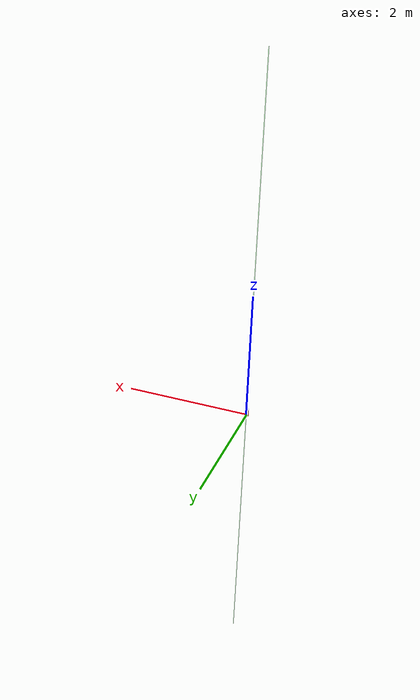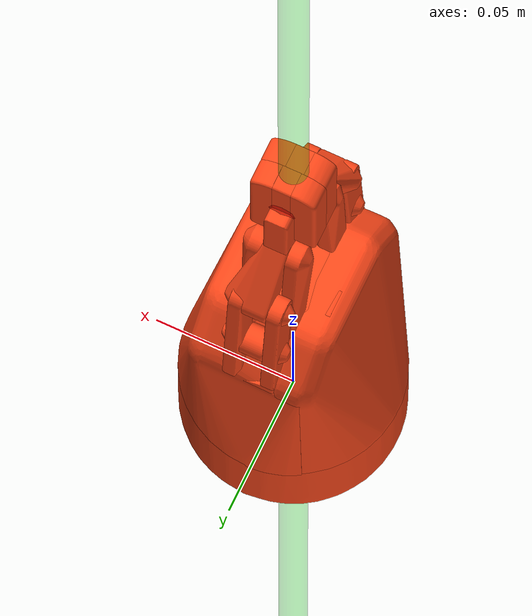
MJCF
<mujoco model="ChangingTek_AG2F90-C">

  <default>
    <default class="visual">
      <geom group="1" type="mesh" contype="0" conaffinity="0"/>
    </default>
    <default class="collision">
      <geom material="collision_material" condim="3" contype="0" conaffinity="1" priority="1" group="0"
            solref="0.005 1" friction="1 0.01 0.01"/>
      <equality solimp="0.99 0.999 1e-05" solref="0.005 1"/>
    </default>
  </default>

  <compiler angle="radian"/>

  <worldbody>
    <body name="gripper_base">
      <site name="ft_frame" pos="0 0 0" size="0.01 0.01 0.01" rgba="1 0 0 1" type="sphere" class="visual"/>
      <geom type="mesh" mesh="gripper_base_0"
            material="white" class="visual"/>
      <geom type="mesh" mesh="gripper_base_1"
            material="silver" class="visual"/>
      <geom type="mesh" mesh="gripper_base_2"
            material="black_metal" class="visual"/>
      <geom type="mesh" class="collision"
            mesh="gripper_base_collision_0"/>
      <geom type="mesh" class="collision"
            mesh="gripper_base_collision_1"/>
      <geom type="mesh" class="collision"
            mesh="gripper_base_collision_2"/>

      <body name="eef" pos="0 0 0.19">
        <site name="grip_site" size="0.01 0.01 0.01" rgba="1 0 0 0.5" type="sphere" class="visual"/>
        <site name="ee_x" pos="0.1 0 0" size="0.005 .1" quat="0.707105  0 0.707108 0 " rgba="1 0 0 0" type="cylinder"
              class="visual"/>
        <site name="ee_y" pos="0 0.1 0" size="0.005 .1" quat="0.707105 0.707108 0 0" rgba="0 1 0 0" type="cylinder"
              class="visual"/>
        <site name="ee_z" pos="0 0 0.1" size="0.005 .1" quat="1 0 0 0" rgba="0 0 1 0" type="cylinder" class="visual"/>
        <!-- This site was added for visualization. -->
        <body name="line_front" pos="0 0 0">
          <site name="grip_site_cylinder" pos="0 0 0" size="0.005 5" rgba="0 1 0 0.3"
                type="cylinder" class="visual"/>
        </body>
      </body>

      <body name="left_1_link" pos="0 -0.030141 0.090147" quat="0.7071054825112363 0.7071080798594735 0.0 0.0">
        <inertial pos="-1.28088127539536E-18 0.0252734640095115 -0.00214040614650292" quat="1.0 0.0 0.0 0.0"
                  mass="0.0129014357535444"
                  diaginertia="3.35976482443235e-06 1.65185846940368e-07 3.25394125032869e-06"/>
        <joint name="gripper_joint" type="hinge" range="0 1" axis="1 0 0"/>
        <geom type="mesh" mesh="link_1"
              material="black_metal" class="visual"/>
        <geom type="mesh" class="collision"
              mesh="link_1_collision_0"/>
        <geom type="mesh" class="collision"
              mesh="link_1_collision_1"/>
        <geom type="mesh" class="collision"
              mesh="link_1_collision_2"/>
        <body name="left_in_link" pos="0 0.023914 -0.0020253" quat="1.0 0.0 0.0 0.0">
          <inertial pos="-1.75682286192042E-11 -0.0108820145632286 -0.00405362317350415" quat="1.0 0.0 0.0 0.0"
                    mass="0.0134557296415635"
                    diaginertia="1.43307384392376e-06 3.88838933230828e-07 1.33747540965672e-06"/>
          <joint name="left_in_Joint" type="hinge" range="0 1" axis="-1 0 0"/>
          <geom type="mesh" mesh="in_link"
                material="black_metal" class="visual"/>
          <geom type="mesh" class="collision"
                mesh="in_link_collision_0"/>
          <geom type="mesh" class="collision"
                mesh="in_link_collision_1"/>
          <geom type="mesh" class="collision"
                mesh="in_link_collision_2"/>
        </body>
        <body name="left_up_link" pos="0 0.054804 -0.0046413" quat="1.0 0.0 0.0 0.0">
          <inertial pos="8.69802213948566E-11 0.0124078988097444 -0.0072525614743534" quat="1.0 0.0 0.0 0.0"
                    mass="0.014692561982481"
                    diaginertia="2.35283034039115e-06 5.8942945477579e-07 2.07228020361883e-06"/>
          <joint name="left_up_Joint" type="hinge" range="0 1" axis="-1 0 0"/>
          <geom type="mesh" mesh="up_link_0"
                material="silver" class="visual"/>
          <geom type="mesh" mesh="up_link_1"
                material="black_metal" class="visual"/>
          <geom type="mesh" class="collision"
                mesh="up_link_collision_0"/>
          <geom type="mesh" class="collision"
                mesh="up_link_collision_1"/>
          <geom type="mesh" class="collision"
                mesh="up_link_collision_2"/>
          <body name="left_Pad_link" pos="0 0.04125 -0.02425" quat="1.0 0.0 0.0 0.0">
            <inertial pos="-3.83777509579761E-08 0.00303135276101582 0.0028336970357949" quat="1.0 0.0 0.0 0.0"
                      mass="0.0183171479595721"
                      diaginertia="2.35683098270332e-06 9.08136064346118e-07 3.18448591439082e-06"/>
            <geom type="mesh" mesh="pad_link"
                  material="black_rubber" class="visual"/>
            <geom type="mesh" class="collision"
                  mesh="pad_link_collision_0"/>
            <geom type="mesh" class="collision"
                  mesh="pad_link_collision_1"/>
            <geom type="mesh" class="collision"
                  mesh="pad_link_collision_2"/>
          </body>
        </body>
      </body>
      <body name="left_2_link" pos="0 -0.016 0.107" quat="0.7071054825112363 0.7071080798594735 0.0 0.0">
        <inertial pos="5.08224485200288E-06 0.0327050710040551 -0.00276963392800038" quat="1.0 0.0 0.0 0.0"
                  mass="0.0188752657753052"
                  diaginertia="3.4145090175335e-06 2.86837057727488e-07 3.39111483394506e-06"/>
        <joint name="left_2_Joint" type="hinge" range="0 1" axis="1 0 0"/>
        <geom type="mesh" mesh="link_2_0"
              material="silver" class="visual"/>
        <geom type="mesh" mesh="link_2_1"
              material="black_metal" class="visual"/>
        <geom type="mesh" class="collision"
              mesh="link_2_collision_0"/>
        <geom type="mesh" class="collision"
              mesh="link_2_collision_1"/>
        <geom type="mesh" class="collision"
              mesh="link_2_collision_2"/>
      </body>
      <body name="right_2_link" pos="0 0.016 0.107"
            quat="-2.5973434669646147e-06 -2.597353007557415e-06 0.7071080798547033 0.707105482506466">
        <inertial pos="1.94651792710713E-17 0.0327174794493866 -0.00277053098700989" quat="1.0 0.0 0.0 0.0"
                  mass="0.0188856364479881"
                  diaginertia="3.41458781978465e-06 2.86883124998043e-07 3.39114800103702e-06"/>
        <joint name="right_2_Joint" type="hinge" range="0 1" axis="1 0 0"/>
        <geom type="mesh" mesh="link_2_0"
              material="silver" class="visual"/>
        <geom type="mesh" mesh="link_2_1"
              material="black_metal" class="visual"/>
        <geom type="mesh" class="collision"
              mesh="link_2_collision_0"/>
        <geom type="mesh" class="collision"
              mesh="link_2_collision_1"/>
        <geom type="mesh" class="collision"
              mesh="link_2_collision_2"/>
      </body>
      <body name="right_1_link" pos="0 0.030141 0.090147"
            quat="-2.5973434669646147e-06 -2.597353007557415e-06 0.7071080798547033 0.707105482506466">
        <inertial pos="-5.25233292439781E-19 0.0252734640095115 -0.00214040614650291" quat="1.0 0.0 0.0 0.0"
                  mass="0.0129014357535444"
                  diaginertia="3.35976482443235e-06 1.65185846940368e-07 3.25394125032869e-06"/>
        <joint name="right_1_Joint" type="hinge" range="0 1" axis="1 0 0"/>
        <geom type="mesh" mesh="link_1"
              material="black_metal" class="visual"/>
        <geom type="mesh" class="collision"
              mesh="link_1_collision_0"/>
        <geom type="mesh" class="collision"
              mesh="link_1_collision_1"/>
        <geom type="mesh" class="collision"
              mesh="link_1_collision_2"/>
        <body name="right_in_link" pos="0 0.023914 -0.0020253" quat="1.0 0.0 0.0 0.0">
          <inertial pos="-1.7568261982498E-11 -0.0108820145632292 -0.00405362317350229" quat="1.0 0.0 0.0 0.0"
                    mass="0.0134557296415635"
                    diaginertia="1.43307384392376e-06 3.88838933230828e-07 1.33747540965672e-06"/>
          <joint name="right_in_Joint" type="hinge" range="0 1" axis="-1 0 0"/>
          <geom type="mesh" mesh="in_link"
                material="black_metal" class="visual"/>
          <geom type="mesh" class="collision"
                mesh="in_link_collision_0"/>
          <geom type="mesh" class="collision"
                mesh="in_link_collision_1"/>
          <geom type="mesh" class="collision"
                mesh="in_link_collision_2"/>
        </body>
        <body name="right_up_link" pos="0 0.054804 -0.0046413" quat="1.0 0.0 0.0 0.0">
          <inertial pos="8.69814518862609E-11 0.0124078988097266 -0.00725256147435587" quat="1.0 0.0 0.0 0.0"
                    mass="0.014692561982481"
                    diaginertia="2.35283034039115e-06 5.89429454773258e-07 2.07228020362137e-06"/>
          <joint name="right_up_Joint" type="hinge" range="0 1" axis="-1 0 0"/>
          <geom type="mesh" mesh="up_link_0"
                material="silver" class="visual"/>
          <geom type="mesh" mesh="up_link_1"
                material="black_metal" class="visual"/>
          <geom type="mesh" class="collision"
                mesh="up_link_collision_0"/>
          <geom type="mesh" class="collision"
                mesh="up_link_collision_1"/>
          <geom type="mesh" class="collision"
                mesh="up_link_collision_2"/>
          <body name="right_Pad_link" pos="0 0.04125 -0.02425" quat="1.0 0.0 0.0 0.0">
            <inertial pos="-3.83777500494227E-08 0.0030313527610159 0.00283369703564792" quat="1.0 0.0 0.0 0.0"
                      mass="0.0366342959191441"
                      diaginertia="4.71366196540664e-06 1.81627212869223e-06 6.36897182878164e-06"/>
            <geom type="mesh" mesh="pad_link"
                  material="black_rubber" class="visual"/>
            <geom type="mesh" class="collision"
                  mesh="pad_link_collision_0"/>
            <geom type="mesh" class="collision"
                  mesh="pad_link_collision_1"/>
            <geom type="mesh" class="collision"
                  mesh="pad_link_collision_2"/>
          </body>
        </body>
      </body>
    </body>
  </worldbody>

  <asset>
    <material name="black_metal" specular="0.5" shininess="0.49" rgba="0.010000 0.010000 0.010000 1.000000"/>
    <material name="black_rubber" specular="0.5" shininess="0.09" rgba="0.050000 0.050000 0.050000 1.000000"/>
    <material name="silver" specular="0.5" shininess="0.49" rgba="0.800000 0.800000 0.800000 1.000000"/>
    <material name="white" specular="0.5" shininess="0.25" rgba="1.000000 1.000000 1.000000 1.000000"/>
    <material name="collision_material" rgba="1.0 0.28 0.1 0.9"/>

    <!-- Gripper base meshes -->
    <mesh name="gripper_base_0" file="gripper_base/gripper_base_0.obj"/>
    <mesh name="gripper_base_1" file="gripper_base/gripper_base_1.obj"/>
    <mesh name="gripper_base_2" file="gripper_base/gripper_base_2.obj"/>
    <mesh name="gripper_base_collision_0" file="gripper_base/gripper_base_collision_0.obj"/>
    <mesh name="gripper_base_collision_1" file="gripper_base/gripper_base_collision_1.obj"/>
    <mesh name="gripper_base_collision_2" file="gripper_base/gripper_base_collision_2.obj"/>

    <!-- Link 1 meshes -->
    <mesh name="link_1" file="link_1/link_1.obj"/>
    <mesh name="link_1_collision_0" file="link_1/link_1_collision_0.obj"/>
    <mesh name="link_1_collision_1" file="link_1/link_1_collision_1.obj"/>
    <mesh name="link_1_collision_2" file="link_1/link_1_collision_2.obj"/>

    <!-- Link 2 meshes -->
    <mesh name="link_2_0" file="link_2/link_2_0.obj"/>
    <mesh name="link_2_1" file="link_2/link_2_1.obj"/>
    <mesh name="link_2_collision_0" file="link_2/link_2_collision_0.obj"/>
    <mesh name="link_2_collision_1" file="link_2/link_2_collision_1.obj"/>
    <mesh name="link_2_collision_2" file="link_2/link_2_collision_2.obj"/>

    <!-- In link meshes -->
    <mesh name="in_link" file="in_link/in_link.obj"/>
    <mesh name="in_link_collision_0" file="in_link/in_link_collision_0.obj"/>
    <mesh name="in_link_collision_1" file="in_link/in_link_collision_1.obj"/>
    <mesh name="in_link_collision_2" file="in_link/in_link_collision_2.obj"/>

    <!-- Up link meshes -->
    <mesh name="up_link_0" file="up_link/up_link_0.obj"/>
    <mesh name="up_link_1" file="up_link/up_link_1.obj"/>
    <mesh name="up_link_collision_0" file="up_link/up_link_collision_0.obj"/>
    <mesh name="up_link_collision_1" file="up_link/up_link_collision_1.obj"/>
    <mesh name="up_link_collision_2" file="up_link/up_link_collision_2.obj"/>

    <!-- Pad link meshes -->
    <mesh name="pad_link" file="pad_link/pad_link.obj"/>
    <mesh name="pad_link_collision_0" file="pad_link/pad_link_collision_0.obj"/>
    <mesh name="pad_link_collision_1" file="pad_link/pad_link_collision_1.obj"/>
    <mesh name="pad_link_collision_2" file="pad_link/pad_link_collision_2.obj"/>
  </asset>

  <actuator>
    <position name="gripper_joint" ctrllimited="true" kp="5" kv="0.01" ctrlrange='0 1.0' joint="gripper_joint"/>
  </actuator>

  <equality>
    <joint joint1="gripper_joint" joint2="left_in_Joint" polycoef="0.0 10.0 0 0 0" solimp="0.95 0.99 0.001"
           solref="0.005 1"/>
    <joint joint1="gripper_joint" joint2="left_up_Joint" polycoef="0.0 1.0 0 0 0" solimp="0.95 0.99 0.001"
           solref="0.005 1"/>
    <joint joint1="gripper_joint" joint2="left_2_Joint" polycoef="0.0 1.0 0 0 0" solimp="0.95 0.99 0.001"
           solref="0.005 1"/>
    <joint joint1="gripper_joint" joint2="right_2_Joint" polycoef="0.0 1.0 0 0 0" solimp="0.95 0.99 0.001"
           solref="0.005 1"/>
    <joint joint1="gripper_joint" joint2="right_1_Joint" polycoef="0.0 1.0 0 0 0" solimp="0.95 0.99 0.001"
           solref="0.005 1"/>
    <joint joint1="gripper_joint" joint2="right_in_Joint" polycoef="0.0 10.0 0 0 0" solimp="0.95 0.99 0.001"
           solref="0.005 1"/>
    <joint joint1="gripper_joint" joint2="right_up_Joint" polycoef="0.0 1.0 0 0 0" solimp="0.95 0.99 0.001"
           solref="0.005 1"/>
  </equality>

  <contact>
    <exclude body1="gripper_base" body2="left_1_link"/>
    <exclude body1="left_1_link" body2="left_in_link"/>
    <exclude body1="left_1_link" body2="left_up_link"/>
    <exclude body1="left_up_link" body2="left_Pad_link"/>
    <exclude body1="gripper_base" body2="left_2_link"/>
    <exclude body1="gripper_base" body2="right_2_link"/>
    <exclude body1="gripper_base" body2="right_1_link"/>
    <exclude body1="right_1_link" body2="right_in_link"/>
    <exclude body1="right_1_link" body2="right_up_link"/>
    <exclude body1="right_up_link" body2="right_Pad_link"/>
  </contact>

  <sensor>
    <force name="force_ee" site="ft_frame"/>
    <torque name="torque_ee" site="ft_frame"/>
  </sensor>
</mujoco>
